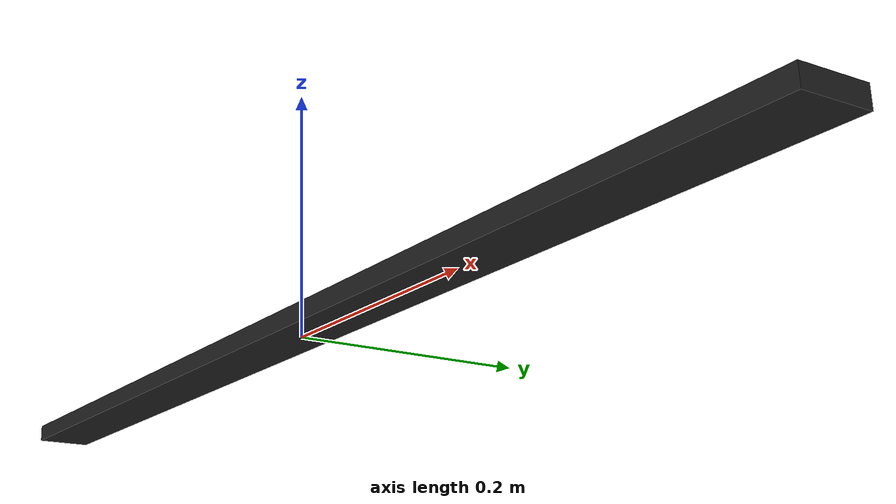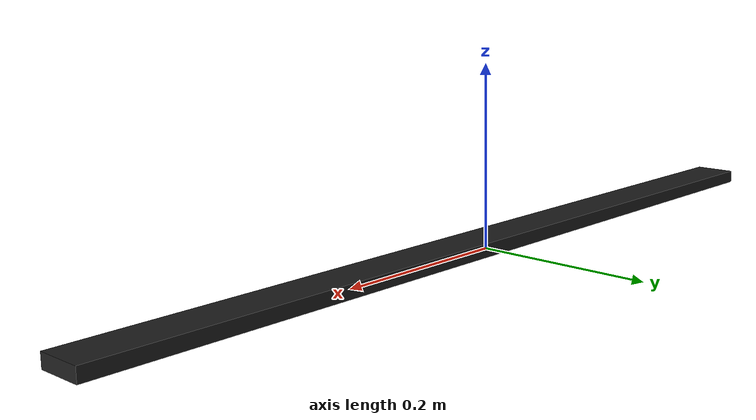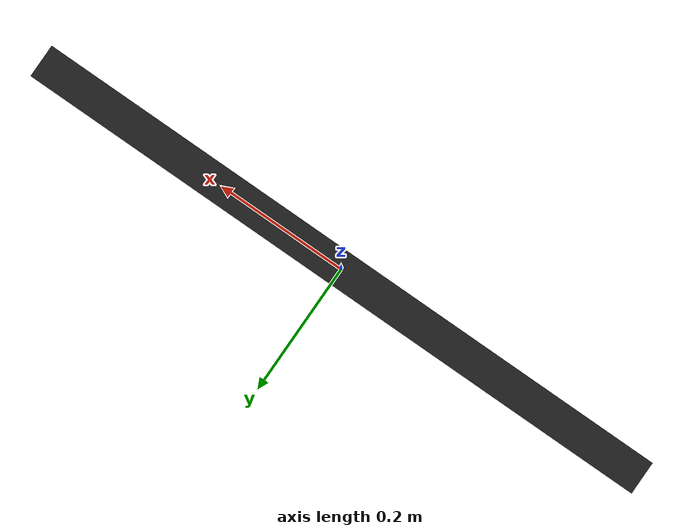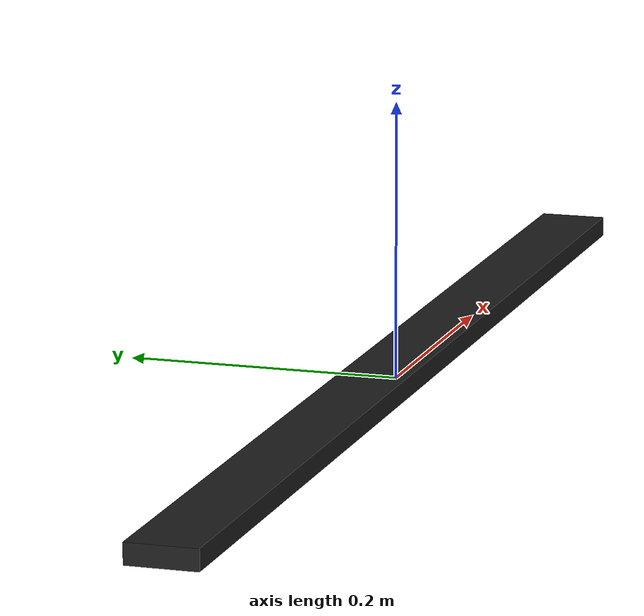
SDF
<?xml version="1.0" ?>
<sdf version="1.4">
  <model name="door_obstacle">
    <static>1</static>
    <link name="door_obstacle_link">
      <!-- ramp up -->
      <collision name="door_obstacle_collision">
        <pose>0. 0. 0.0075 0. 0. 0.</pose>
        <geometry>
          <box>
            <size>1. 0.05 0.015</size>
          </box>
        </geometry>
      </collision>
      <visual name="door_obstacle_visual">
        <pose>0. 0. 0.0075 0. 0. 0.</pose>
        <geometry>
          <box>
            <size>1. 0.05 0.015</size>
          </box>
        </geometry>
        <material>
          <script>
            <uri>file://media/materials/scripts/gazebo.material</uri>
            <name>Gazebo/Black</name>
          </script>
        </material>
      </visual>
      <velocity_decay>
        <linear>0.</linear>
        <angular>0.</angular>
      </velocity_decay>
      <self_collide>0</self_collide>
      <kinematic>0</kinematic>
      <gravity>1</gravity>
    </link>
  </model>
</sdf>
